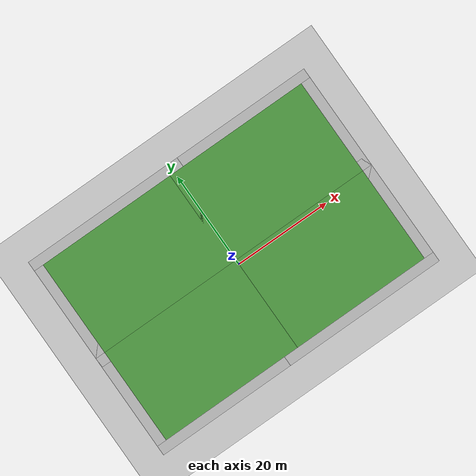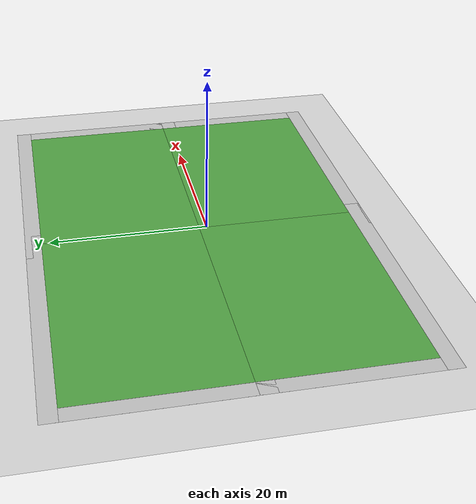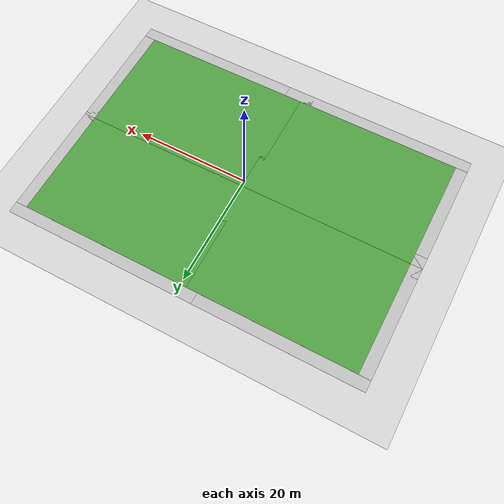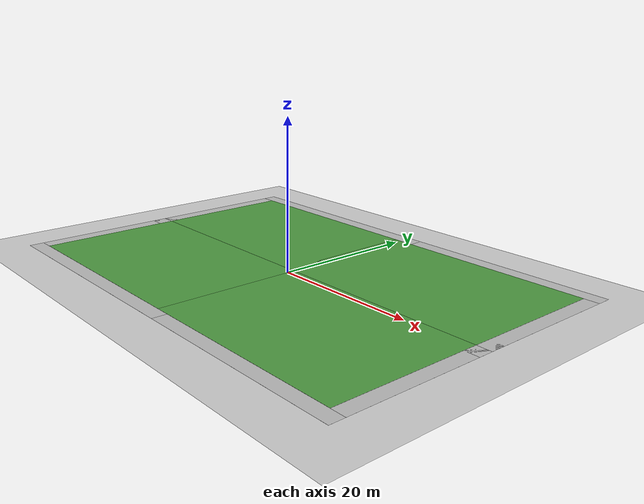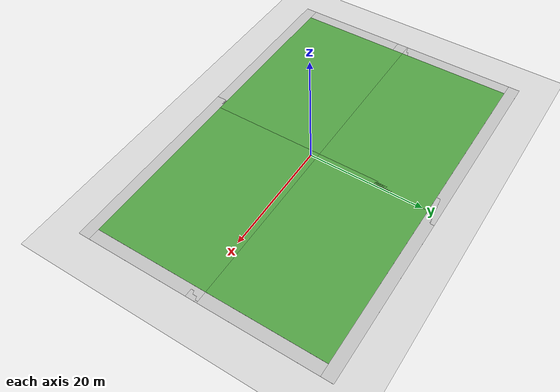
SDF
<sdf version="1.4">
 <world name="default">
  <light name="sun" type="directional">
   <pose>0 0 10 0 -0 0</pose>
   <diffuse>0.8 0.8 0.8 1</diffuse>
   <specular>0.2 0.2 0.2 1</specular>
   <attenuation>
    <range>1000</range>
    <constant>0.9</constant>
    <linear>0.01</linear>
    <quadratic>0.001</quadratic>
   </attenuation>
   <direction>-0.5 0.1 -0.9</direction>
  </light>
  <model name="ground_plane">
   <static>1</static>
   <link name="link">
    <collision name="collision">
     <geometry><plane><normal>0 0 1</normal><size>100 100</size></plane></geometry>
     <surface><friction><ode><mu>100</mu><mu2>50</mu2></ode></friction></surface>
    </collision>
    <visual name="visual">
     <cast_shadows>0</cast_shadows>
     <geometry><plane><normal>0 0 1</normal><size>100 100</size></plane></geometry>
     <material>
      <script><uri>file://media/materials/scripts/gazebo.material</uri><name>Gazebo/Grey</name></script>
     </material>
    </visual>
    <velocity_decay><linear>0</linear><angular>0</angular></velocity_decay>
   </link>
  </model>
  <physics type="ode">
   <max_step_size>0.001</max_step_size>
   <real_time_factor>1</real_time_factor>
   <real_time_update_rate>1000</real_time_update_rate>
   <gravity>0 0 -9.8</gravity>
  </physics>
  <scene><ambient>0.4 0.4 0.4 1</ambient><background>0.7 0.7 0.7 1</background><shadows>1</shadows></scene>
  <spherical_coordinates>
   <surface_model>EARTH_WGS84</surface_model>
   <latitude_deg>0</latitude_deg>
   <longitude_deg>0</longitude_deg>
   <elevation>0</elevation>
   <heading_deg>0</heading_deg>
  </spherical_coordinates>
  <model name="robocup_3d_field_3">
   <static>1</static>
   <link name="field">
    <pose>0 0 0.01 0 -0 0</pose>
    <collision name="collision">
     <geometry><plane><normal>0 0 1</normal><size>30 20</size></plane></geometry>
     <surface><friction><ode><mu>100</mu><mu2>50</mu2></ode></friction></surface>
    </collision>
    <visual name="base1">
     <pose>0 11 0.001 0 -0 0</pose>
     <cast_shadows>0</cast_shadows>
     <geometry><plane><normal>0 0 1</normal><size>34 2</size></plane></geometry>
     <material>
      <script>
       <uri>model://robocup_3Dsim_field/materials/scripts/</uri>
       <uri>model://robocup_3Dsim_field/materials/textures/</uri>
       <name>RoboCup/FieldBorder</name>
      </script>
     </material>
    </visual>
    <visual name="base2">
     <pose>0 -11 0.001 0 -0 0</pose>
     <cast_shadows>0</cast_shadows>
     <geometry><plane><normal>0 0 1</normal><size>34 2</size></plane></geometry>
     <material>
      <script>
       <uri>model://robocup_3Dsim_field/materials/scripts/</uri>
       <uri>model://robocup_3Dsim_field/materials/textures/</uri>
       <name>RoboCup/FieldBorder</name>
      </script>
     </material>
    </visual>
    <visual name="base3">
     <pose>16 0 0.001 0 -0 0</pose>
     <cast_shadows>0</cast_shadows>
     <geometry><plane><normal>0 0 1</normal><size>2 20</size></plane></geometry>
     <material>
      <script>
       <uri>model://robocup_3Dsim_field/materials/scripts/</uri>
       <uri>model://robocup_3Dsim_field/materials/textures/</uri>
       <name>RoboCup/FieldBorder</name>
      </script>
     </material>
    </visual>
    <visual name="base4">
     <pose>-16 0 0.001 0 -0 0</pose>
     <cast_shadows>0</cast_shadows>
     <geometry><plane><normal>0 0 1</normal><size>2 20</size></plane></geometry>
     <material>
      <script>
       <uri>model://robocup_3Dsim_field/materials/scripts/</uri>
       <uri>model://robocup_3Dsim_field/materials/textures/</uri>
       <name>RoboCup/FieldBorder</name>
      </script>
     </material>
    </visual>
    <visual name="carpet">
     <cast_shadows>0</cast_shadows>
     <geometry><plane><normal>0 0 1</normal><size>30 20</size></plane></geometry>
     <material>
      <script>
       <uri>model://robocup_3Dsim_field/materials/scripts/</uri>
       <uri>model://robocup_3Dsim_field/materials/textures/</uri>
       <name>RoboCup/Grass</name>
      </script>
     </material>
    </visual>
    <velocity_decay><linear>0</linear><angular>0</angular></velocity_decay>
   </link>
   <pose>-15 11 0 0 -0 0</pose>
  </model>
  <model name="robocup_3d_field_5">
   <static>1</static>
   <link name="field">
    <pose>0 0 0.01 0 -0 0</pose>
    <collision name="collision">
     <geometry><plane><normal>0 0 1</normal><size>30 20</size></plane></geometry>
     <surface><friction><ode><mu>100</mu><mu2>50</mu2></ode></friction></surface>
    </collision>
    <visual name="base1">
     <pose>0 11 0.001 0 -0 0</pose>
     <cast_shadows>0</cast_shadows>
     <geometry><plane><normal>0 0 1</normal><size>34 2</size></plane></geometry>
     <material>
      <script>
       <uri>model://robocup_3Dsim_field/materials/scripts/</uri>
       <uri>model://robocup_3Dsim_field/materials/textures/</uri>
       <name>RoboCup/FieldBorder</name>
      </script>
     </material>
    </visual>
    <visual name="base2">
     <pose>0 -11 0.001 0 -0 0</pose>
     <cast_shadows>0</cast_shadows>
     <geometry><plane><normal>0 0 1</normal><size>34 2</size></plane></geometry>
     <material>
      <script>
       <uri>model://robocup_3Dsim_field/materials/scripts/</uri>
       <uri>model://robocup_3Dsim_field/materials/textures/</uri>
       <name>RoboCup/FieldBorder</name>
      </script>
     </material>
    </visual>
    <visual name="base3">
     <pose>16 0 0.001 0 -0 0</pose>
     <cast_shadows>0</cast_shadows>
     <geometry><plane><normal>0 0 1</normal><size>2 20</size></plane></geometry>
     <material>
      <script>
       <uri>model://robocup_3Dsim_field/materials/scripts/</uri>
       <uri>model://robocup_3Dsim_field/materials/textures/</uri>
       <name>RoboCup/FieldBorder</name>
      </script>
     </material>
    </visual>
    <visual name="base4">
     <pose>-16 0 0.001 0 -0 0</pose>
     <cast_shadows>0</cast_shadows>
     <geometry><plane><normal>0 0 1</normal><size>2 20</size></plane></geometry>
     <material>
      <script>
       <uri>model://robocup_3Dsim_field/materials/scripts/</uri>
       <uri>model://robocup_3Dsim_field/materials/textures/</uri>
       <name>RoboCup/FieldBorder</name>
      </script>
     </material>
    </visual>
    <visual name="carpet">
     <cast_shadows>0</cast_shadows>
     <geometry><plane><normal>0 0 1</normal><size>30 20</size></plane></geometry>
     <material>
      <script>
       <uri>model://robocup_3Dsim_field/materials/scripts/</uri>
       <uri>model://robocup_3Dsim_field/materials/textures/</uri>
       <name>RoboCup/Grass</name>
      </script>
     </material>
    </visual>
    <velocity_decay><linear>0</linear><angular>0</angular></velocity_decay>
   </link>
   <pose>-15 -9 0 0 -0 0</pose>
  </model>
  <model name="robocup_3d_field_6">
   <static>1</static>
   <link name="field">
    <pose>0 0 0.01 0 -0 0</pose>
    <collision name="collision">
     <geometry><plane><normal>0 0 1</normal><size>30 20</size></plane></geometry>
     <surface><friction><ode><mu>100</mu><mu2>50</mu2></ode></friction></surface>
    </collision>
    <visual name="base1">
     <pose>0 11 0.001 0 -0 0</pose>
     <cast_shadows>0</cast_shadows>
     <geometry><plane><normal>0 0 1</normal><size>34 2</size></plane></geometry>
     <material>
      <script>
       <uri>model://robocup_3Dsim_field/materials/scripts/</uri>
       <uri>model://robocup_3Dsim_field/materials/textures/</uri>
       <name>RoboCup/FieldBorder</name>
      </script>
     </material>
    </visual>
    <visual name="base2">
     <pose>0 -11 0.001 0 -0 0</pose>
     <cast_shadows>0</cast_shadows>
     <geometry><plane><normal>0 0 1</normal><size>34 2</size></plane></geometry>
     <material>
      <script>
       <uri>model://robocup_3Dsim_field/materials/scripts/</uri>
       <uri>model://robocup_3Dsim_field/materials/textures/</uri>
       <name>RoboCup/FieldBorder</name>
      </script>
     </material>
    </visual>
    <visual name="base3">
     <pose>16 0 0.001 0 -0 0</pose>
     <cast_shadows>0</cast_shadows>
     <geometry><plane><normal>0 0 1</normal><size>2 20</size></plane></geometry>
     <material>
      <script>
       <uri>model://robocup_3Dsim_field/materials/scripts/</uri>
       <uri>model://robocup_3Dsim_field/materials/textures/</uri>
       <name>RoboCup/FieldBorder</name>
      </script>
     </material>
    </visual>
    <visual name="base4">
     <pose>-16 0 0.001 0 -0 0</pose>
     <cast_shadows>0</cast_shadows>
     <geometry><plane><normal>0 0 1</normal><size>2 20</size></plane></geometry>
     <material>
      <script>
       <uri>model://robocup_3Dsim_field/materials/scripts/</uri>
       <uri>model://robocup_3Dsim_field/materials/textures/</uri>
       <name>RoboCup/FieldBorder</name>
      </script>
     </material>
    </visual>
    <visual name="carpet">
     <cast_shadows>0</cast_shadows>
     <geometry><plane><normal>0 0 1</normal><size>30 20</size></plane></geometry>
     <material>
      <script>
       <uri>model://robocup_3Dsim_field/materials/scripts/</uri>
       <uri>model://robocup_3Dsim_field/materials/textures/</uri>
       <name>RoboCup/Grass</name>
      </script>
     </material>
    </visual>
    <velocity_decay><linear>0</linear><angular>0</angular></velocity_decay>
   </link>
   <pose>14 11 0 0 -0 0</pose>
  </model>
  <model name="robocup_3d_field_8">
   <static>1</static>
   <link name="field">
    <pose>0 0 0.01 0 -0 0</pose>
    <collision name="collision">
     <geometry><plane><normal>0 0 1</normal><size>30 20</size></plane></geometry>
     <surface><friction><ode><mu>100</mu><mu2>50</mu2></ode></friction></surface>
    </collision>
    <visual name="base1">
     <pose>0 11 0.001 0 -0 0</pose>
     <cast_shadows>0</cast_shadows>
     <geometry><plane><normal>0 0 1</normal><size>34 2</size></plane></geometry>
     <material>
      <script>
       <uri>model://robocup_3Dsim_field/materials/scripts/</uri>
       <uri>model://robocup_3Dsim_field/materials/textures/</uri>
       <name>RoboCup/FieldBorder</name>
      </script>
     </material>
    </visual>
    <visual name="base2">
     <pose>0 -11 0.001 0 -0 0</pose>
     <cast_shadows>0</cast_shadows>
     <geometry><plane><normal>0 0 1</normal><size>34 2</size></plane></geometry>
     <material>
      <script>
       <uri>model://robocup_3Dsim_field/materials/scripts/</uri>
       <uri>model://robocup_3Dsim_field/materials/textures/</uri>
       <name>RoboCup/FieldBorder</name>
      </script>
     </material>
    </visual>
    <visual name="base3">
     <pose>16 0 0.001 0 -0 0</pose>
     <cast_shadows>0</cast_shadows>
     <geometry><plane><normal>0 0 1</normal><size>2 20</size></plane></geometry>
     <material>
      <script>
       <uri>model://robocup_3Dsim_field/materials/scripts/</uri>
       <uri>model://robocup_3Dsim_field/materials/textures/</uri>
       <name>RoboCup/FieldBorder</name>
      </script>
     </material>
    </visual>
    <visual name="base4">
     <pose>-16 0 0.001 0 -0 0</pose>
     <cast_shadows>0</cast_shadows>
     <geometry><plane><normal>0 0 1</normal><size>2 20</size></plane></geometry>
     <material>
      <script>
       <uri>model://robocup_3Dsim_field/materials/scripts/</uri>
       <uri>model://robocup_3Dsim_field/materials/textures/</uri>
       <name>RoboCup/FieldBorder</name>
      </script>
     </material>
    </visual>
    <visual name="carpet">
     <cast_shadows>0</cast_shadows>
     <geometry><plane><normal>0 0 1</normal><size>30 20</size></plane></geometry>
     <material>
      <script>
       <uri>model://robocup_3Dsim_field/materials/scripts/</uri>
       <uri>model://robocup_3Dsim_field/materials/textures/</uri>
       <name>RoboCup/Grass</name>
      </script>
     </material>
    </visual>
    <velocity_decay><linear>0</linear><angular>0</angular></velocity_decay>
   </link>
   <pose>14 -9 0 0 -0 0</pose>
  </model>
 </world>
</sdf>
